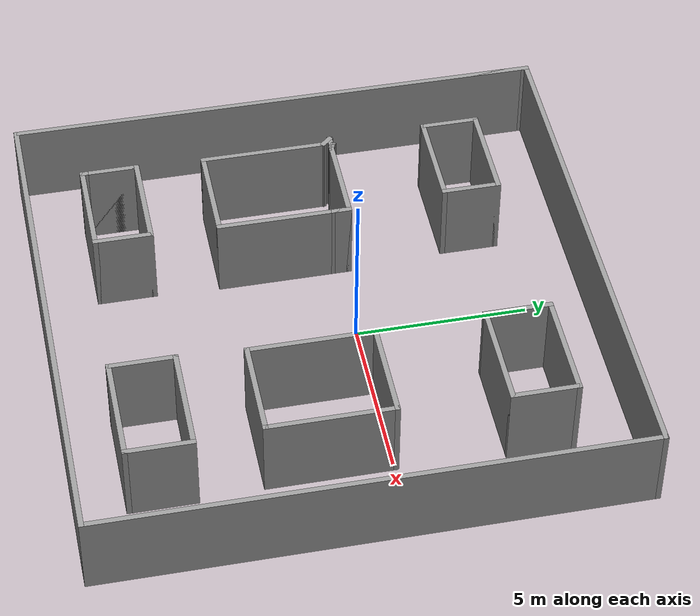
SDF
<?xml version='1.0'?>
<sdf version='1.7'>
  <model name='modelos'>
    <pose>-0.053157 -0.98343 0 0 -0 0</pose>
    <link name='Wall_10'>
      <collision name='Wall_10_Collision'>
        <geometry>
          <box>
            <size>3 0.15 2.5</size>
          </box>
        </geometry>
        <pose>0 0 1.25 0 -0 0</pose>
      </collision>
      <visual name='Wall_10_Visual'>
        <pose>0 0 1.25 0 -0 0</pose>
        <geometry>
          <box>
            <size>3 0.15 2.5</size>
          </box>
        </geometry>
        <material>
          <script>
            <uri>file://media/materials/scripts/gazebo.material</uri>
            <name>Gazebo/Grey</name>
          </script>
          <ambient>1 1 1 1</ambient>
        </material>
        <meta>
          <layer>0</layer>
        </meta>
      </visual>
      <pose>-4.15387 4.13978 0 0 -0 3.14159</pose>
    </link>
    <link name='Wall_11'>
      <collision name='Wall_11_Collision'>
        <geometry>
          <box>
            <size>1.75 0.15 2.5</size>
          </box>
        </geometry>
        <pose>0 0 1.25 0 -0 0</pose>
      </collision>
      <visual name='Wall_11_Visual'>
        <pose>0 0 1.25 0 -0 0</pose>
        <geometry>
          <box>
            <size>1.75 0.15 2.5</size>
          </box>
        </geometry>
        <material>
          <script>
            <uri>file://media/materials/scripts/gazebo.material</uri>
            <name>Gazebo/Grey</name>
          </script>
          <ambient>1 1 1 1</ambient>
        </material>
        <meta>
          <layer>0</layer>
        </meta>
      </visual>
      <pose>-5.57887 4.93978 0 0 -0 1.5708</pose>
    </link>
    <link name='Wall_13'>
      <collision name='Wall_13_Collision'>
        <geometry>
          <box>
            <size>2 0.15 2.5</size>
          </box>
        </geometry>
        <pose>0 0 1.25 0 -0 0</pose>
      </collision>
      <visual name='Wall_13_Visual'>
        <pose>0 0 1.25 0 -0 0</pose>
        <geometry>
          <box>
            <size>2 0.15 2.5</size>
          </box>
        </geometry>
        <material>
          <script>
            <uri>file://media/materials/scripts/gazebo.material</uri>
            <name>Gazebo/Grey</name>
          </script>
          <ambient>1 1 1 1</ambient>
        </material>
        <meta>
          <layer>0</layer>
        </meta>
      </visual>
      <pose>5.36291 5.09592 0 0 -0 1.5708</pose>
    </link>
    <link name='Wall_14'>
      <collision name='Wall_14_Collision'>
        <geometry>
          <box>
            <size>3.25 0.15 2.5</size>
          </box>
        </geometry>
        <pose>0 0 1.25 0 -0 0</pose>
      </collision>
      <visual name='Wall_14_Visual'>
        <pose>0 0 1.25 0 -0 0</pose>
        <geometry>
          <box>
            <size>3.25 0.15 2.5</size>
          </box>
        </geometry>
        <material>
          <script>
            <uri>file://media/materials/scripts/gazebo.material</uri>
            <name>Gazebo/Grey</name>
          </script>
          <ambient>1 1 1 1</ambient>
        </material>
        <meta>
          <layer>0</layer>
        </meta>
      </visual>
      <pose>3.81291 6.02092 0 0 -0 3.14159</pose>
    </link>
    <link name='Wall_15'>
      <collision name='Wall_15_Collision'>
        <geometry>
          <box>
            <size>2 0.15 2.5</size>
          </box>
        </geometry>
        <pose>0 0 1.25 0 -0 0</pose>
      </collision>
      <visual name='Wall_15_Visual'>
        <pose>0 0 1.25 0 -0 0</pose>
        <geometry>
          <box>
            <size>2 0.15 2.5</size>
          </box>
        </geometry>
        <material>
          <script>
            <uri>file://media/materials/scripts/gazebo.material</uri>
            <name>Gazebo/Grey</name>
          </script>
          <ambient>1 1 1 1</ambient>
        </material>
        <meta>
          <layer>0</layer>
        </meta>
      </visual>
      <pose>2.26291 5.09592 0 0 -0 -1.5708</pose>
    </link>
    <link name='Wall_16'>
      <collision name='Wall_16_Collision'>
        <geometry>
          <box>
            <size>3.25 0.15 2.5</size>
          </box>
        </geometry>
        <pose>0 0 1.25 0 -0 0</pose>
      </collision>
      <visual name='Wall_16_Visual'>
        <pose>0 0 1.25 0 -0 0</pose>
        <geometry>
          <box>
            <size>3.25 0.15 2.5</size>
          </box>
        </geometry>
        <material>
          <script>
            <uri>file://media/materials/scripts/gazebo.material</uri>
            <name>Gazebo/Grey</name>
          </script>
          <ambient>1 1 1 1</ambient>
        </material>
        <meta>
          <layer>0</layer>
        </meta>
      </visual>
      <pose>3.81291 4.17092 0 0 -0 0</pose>
    </link>
    <link name='Wall_2'>
      <collision name='Wall_2_Collision'>
        <geometry>
          <box>
            <size>15.5 0.15 2.5</size>
          </box>
        </geometry>
        <pose>0 0 1.25 0 -0 0</pose>
      </collision>
      <visual name='Wall_2_Visual'>
        <pose>0 0 1.25 0 -0 0</pose>
        <geometry>
          <box>
            <size>15.5 0.15 2.5</size>
          </box>
        </geometry>
        <material>
          <script>
            <uri>file://media/materials/scripts/gazebo.material</uri>
            <name>Gazebo/Grey</name>
          </script>
          <ambient>1 1 1 1</ambient>
        </material>
        <meta>
          <layer>0</layer>
        </meta>
      </visual>
      <pose>-7.55 -0.125 0 0 -0 -1.5708</pose>
    </link>
    <link name='Wall_20'>
      <collision name='Wall_20_Collision'>
        <geometry>
          <box>
            <size>1.5 0.15 2.5</size>
          </box>
        </geometry>
        <pose>0 0 1.25 0 -0 0</pose>
      </collision>
      <visual name='Wall_20_Visual'>
        <pose>0 0 1.25 0 -0 0</pose>
        <geometry>
          <box>
            <size>1.5 0.15 2.5</size>
          </box>
        </geometry>
        <material>
          <script>
            <uri>file://media/materials/scripts/gazebo.material</uri>
            <name>Gazebo/Grey</name>
          </script>
          <ambient>1 1 1 1</ambient>
        </material>
        <meta>
          <layer>0</layer>
        </meta>
      </visual>
      <pose>-5.45819 -5.17064 0 0 -0 1.5708</pose>
    </link>
    <link name='Wall_21'>
      <collision name='Wall_21_Collision'>
        <geometry>
          <box>
            <size>3 0.15 2.5</size>
          </box>
        </geometry>
        <pose>0 0 1.25 0 -0 0</pose>
      </collision>
      <visual name='Wall_21_Visual'>
        <pose>0 0 1.25 0 -0 0</pose>
        <geometry>
          <box>
            <size>3 0.15 2.5</size>
          </box>
        </geometry>
        <material>
          <script>
            <uri>file://media/materials/scripts/gazebo.material</uri>
            <name>Gazebo/Grey</name>
          </script>
          <ambient>1 1 1 1</ambient>
        </material>
        <meta>
          <layer>0</layer>
        </meta>
      </visual>
      <pose>-4.03319 -4.49564 0 0 -0 0</pose>
    </link>
    <link name='Wall_22'>
      <collision name='Wall_22_Collision'>
        <geometry>
          <box>
            <size>1.75 0.15 2.5</size>
          </box>
        </geometry>
        <pose>0 0 1.25 0 -0 0</pose>
      </collision>
      <visual name='Wall_22_Visual'>
        <pose>0 0 1.25 0 -0 0</pose>
        <geometry>
          <box>
            <size>1.75 0.15 2.5</size>
          </box>
        </geometry>
        <material>
          <script>
            <uri>file://media/materials/scripts/gazebo.material</uri>
            <name>Gazebo/Grey</name>
          </script>
          <ambient>1 1 1 1</ambient>
        </material>
        <meta>
          <layer>0</layer>
        </meta>
      </visual>
      <pose>-2.60819 -5.29564 0 0 -0 -1.5708</pose>
    </link>
    <link name='Wall_23'>
      <collision name='Wall_23_Collision'>
        <geometry>
          <box>
            <size>3 0.15 2.5</size>
          </box>
        </geometry>
        <pose>0 0 1.25 0 -0 0</pose>
      </collision>
      <visual name='Wall_23_Visual'>
        <pose>0 0 1.25 0 -0 0</pose>
        <geometry>
          <box>
            <size>3 0.15 2.5</size>
          </box>
        </geometry>
        <material>
          <script>
            <uri>file://media/materials/scripts/gazebo.material</uri>
            <name>Gazebo/Grey</name>
          </script>
          <ambient>1 1 1 1</ambient>
        </material>
        <meta>
          <layer>0</layer>
        </meta>
      </visual>
      <pose>-4.03319 -6.09564 0 0 -0 3.14159</pose>
    </link>
    <link name='Wall_24'>
      <collision name='Wall_24_Collision'>
        <geometry>
          <box>
            <size>1.75 0.15 2.5</size>
          </box>
        </geometry>
        <pose>0 0 1.25 0 -0 0</pose>
      </collision>
      <visual name='Wall_24_Visual'>
        <pose>0 0 1.25 0 -0 0</pose>
        <geometry>
          <box>
            <size>1.75 0.15 2.5</size>
          </box>
        </geometry>
        <material>
          <script>
            <uri>file://media/materials/scripts/gazebo.material</uri>
            <name>Gazebo/Grey</name>
          </script>
          <ambient>1 1 1 1</ambient>
        </material>
        <meta>
          <layer>0</layer>
        </meta>
      </visual>
      <pose>-5.45819 -5.29564 0 0 -0 1.5708</pose>
    </link>
    <link name='Wall_26'>
      <collision name='Wall_26_Collision'>
        <geometry>
          <box>
            <size>3.75 0.15 2.5</size>
          </box>
        </geometry>
        <pose>0 0 1.25 0 -0 0</pose>
      </collision>
      <visual name='Wall_26_Visual'>
        <pose>0 0 1.25 0 -0 0</pose>
        <geometry>
          <box>
            <size>3.75 0.15 2.5</size>
          </box>
        </geometry>
        <material>
          <script>
            <uri>file://media/materials/scripts/gazebo.material</uri>
            <name>Gazebo/Grey</name>
          </script>
          <ambient>1 1 1 1</ambient>
        </material>
        <meta>
          <layer>0</layer>
        </meta>
      </visual>
      <pose>-5.37773 -0.72657 0 0 -0 -1.5708</pose>
    </link>
    <link name='Wall_27'>
      <collision name='Wall_27_Collision'>
        <geometry>
          <box>
            <size>3 0.15 2.5</size>
          </box>
        </geometry>
        <pose>0 0 1.25 0 -0 0</pose>
      </collision>
      <visual name='Wall_27_Visual'>
        <pose>0 0 1.25 0 -0 0</pose>
        <geometry>
          <box>
            <size>3 0.15 2.5</size>
          </box>
        </geometry>
        <material>
          <script>
            <uri>file://media/materials/scripts/gazebo.material</uri>
            <name>Gazebo/Grey</name>
          </script>
          <ambient>1 1 1 1</ambient>
        </material>
        <meta>
          <layer>0</layer>
        </meta>
      </visual>
      <pose>-3.95273 -2.52657 0 0 -0 0</pose>
    </link>
    <link name='Wall_28'>
      <collision name='Wall_28_Collision'>
        <geometry>
          <box>
            <size>3.5 0.15 2.5</size>
          </box>
        </geometry>
        <pose>0 0 1.25 0 -0 0</pose>
      </collision>
      <visual name='Wall_28_Visual'>
        <pose>0 0 1.25 0 -0 0</pose>
        <geometry>
          <box>
            <size>3.5 0.15 2.5</size>
          </box>
        </geometry>
        <material>
          <script>
            <uri>file://media/materials/scripts/gazebo.material</uri>
            <name>Gazebo/Grey</name>
          </script>
          <ambient>1 1 1 1</ambient>
        </material>
        <meta>
          <layer>0</layer>
        </meta>
      </visual>
      <pose>-2.52773 -0.85157 0 0 -0 1.5708</pose>
    </link>
    <link name='Wall_29'>
      <collision name='Wall_29_Collision'>
        <geometry>
          <box>
            <size>0.25 0.15 2.5</size>
          </box>
        </geometry>
        <pose>0 0 1.25 0 -0 0</pose>
      </collision>
      <visual name='Wall_29_Visual'>
        <pose>0 0 1.25 0 -0 0</pose>
        <geometry>
          <box>
            <size>0.25 0.15 2.5</size>
          </box>
        </geometry>
        <material>
          <script>
            <uri>file://media/materials/scripts/gazebo.material</uri>
            <name>Gazebo/Grey</name>
          </script>
          <ambient>1 1 1 1</ambient>
        </material>
        <meta>
          <layer>0</layer>
        </meta>
      </visual>
      <pose>-2.52773 0.87343 0 0 -0 1.5708</pose>
    </link>
    <link name='Wall_3'>
      <collision name='Wall_3_Collision'>
        <geometry>
          <box>
            <size>15.25 0.15 2.5</size>
          </box>
        </geometry>
        <pose>0 0 1.25 0 -0 0</pose>
      </collision>
      <visual name='Wall_3_Visual'>
        <pose>0 0 1.25 0 -0 0</pose>
        <geometry>
          <box>
            <size>15.25 0.15 2.5</size>
          </box>
        </geometry>
        <material>
          <script>
            <uri>file://media/materials/scripts/gazebo.material</uri>
            <name>Gazebo/Grey</name>
          </script>
          <ambient>1 1 1 1</ambient>
        </material>
        <meta>
          <layer>0</layer>
        </meta>
      </visual>
      <pose>0 -7.8 0 0 -0 0</pose>
    </link>
    <link name='Wall_30'>
      <collision name='Wall_30_Collision'>
        <geometry>
          <box>
            <size>0.5 0.15 2.5</size>
          </box>
        </geometry>
        <pose>0 0 1.25 0 -0 0</pose>
      </collision>
      <visual name='Wall_30_Visual'>
        <pose>0 0 1.25 0 -0 0</pose>
        <geometry>
          <box>
            <size>0.5 0.15 2.5</size>
          </box>
        </geometry>
        <material>
          <script>
            <uri>file://media/materials/scripts/gazebo.material</uri>
            <name>Gazebo/Grey</name>
          </script>
          <ambient>1 1 1 1</ambient>
        </material>
        <meta>
          <layer>0</layer>
        </meta>
      </visual>
      <pose>-2.52773 1.09843 0 0 -0 1.5708</pose>
    </link>
    <link name='Wall_31'>
      <collision name='Wall_31_Collision'>
        <geometry>
          <box>
            <size>2.75 0.15 2.5</size>
          </box>
        </geometry>
        <pose>0 0 1.25 0 -0 0</pose>
      </collision>
      <visual name='Wall_31_Visual'>
        <pose>0 0 1.25 0 -0 0</pose>
        <geometry>
          <box>
            <size>2.75 0.15 2.5</size>
          </box>
        </geometry>
        <material>
          <script>
            <uri>file://media/materials/scripts/gazebo.material</uri>
            <name>Gazebo/Grey</name>
          </script>
          <ambient>1 1 1 1</ambient>
        </material>
        <meta>
          <layer>0</layer>
        </meta>
      </visual>
      <pose>-3.82773 1.27343 0 0 -0 3.14159</pose>
    </link>
    <link name='Wall_32'>
      <collision name='Wall_32_Collision'>
        <geometry>
          <box>
            <size>0.25 0.15 2.5</size>
          </box>
        </geometry>
        <pose>0 0 1.25 0 -0 0</pose>
      </collision>
      <visual name='Wall_32_Visual'>
        <pose>0 0 1.25 0 -0 0</pose>
        <geometry>
          <box>
            <size>0.25 0.15 2.5</size>
          </box>
        </geometry>
        <material>
          <script>
            <uri>file://media/materials/scripts/gazebo.material</uri>
            <name>Gazebo/Grey</name>
          </script>
          <ambient>1 1 1 1</ambient>
        </material>
        <meta>
          <layer>0</layer>
        </meta>
      </visual>
      <pose>-5.17603 1.28637 0 0 -0 2.87979</pose>
    </link>
    <link name='Wall_33'>
      <collision name='Wall_33_Collision'>
        <geometry>
          <box>
            <size>0.25 0.15 2.5</size>
          </box>
        </geometry>
        <pose>0 0 1.25 0 -0 0</pose>
      </collision>
      <visual name='Wall_33_Visual'>
        <pose>0 0 1.25 0 -0 0</pose>
        <geometry>
          <box>
            <size>0.25 0.15 2.5</size>
          </box>
        </geometry>
        <material>
          <script>
            <uri>file://media/materials/scripts/gazebo.material</uri>
            <name>Gazebo/Grey</name>
          </script>
          <ambient>1 1 1 1</ambient>
        </material>
        <meta>
          <layer>0</layer>
        </meta>
      </visual>
      <pose>-5.26763 1.32431 0 0 -0 2.61799</pose>
    </link>
    <link name='Wall_34'>
      <collision name='Wall_34_Collision'>
        <geometry>
          <box>
            <size>0.25 0.15 2.5</size>
          </box>
        </geometry>
        <pose>0 0 1.25 0 -0 0</pose>
      </collision>
      <visual name='Wall_34_Visual'>
        <pose>0 0 1.25 0 -0 0</pose>
        <geometry>
          <box>
            <size>0.25 0.15 2.5</size>
          </box>
        </geometry>
        <material>
          <script>
            <uri>file://media/materials/scripts/gazebo.material</uri>
            <name>Gazebo/Grey</name>
          </script>
          <ambient>1 1 1 1</ambient>
        </material>
        <meta>
          <layer>0</layer>
        </meta>
      </visual>
      <pose>-5.26763 1.32431 0 0 -0 -0.523599</pose>
    </link>
    <link name='Wall_35'>
      <collision name='Wall_35_Collision'>
        <geometry>
          <box>
            <size>0.5 0.15 2.5</size>
          </box>
        </geometry>
        <pose>0 0 1.25 0 -0 0</pose>
      </collision>
      <visual name='Wall_35_Visual'>
        <pose>0 0 1.25 0 -0 0</pose>
        <geometry>
          <box>
            <size>0.5 0.15 2.5</size>
          </box>
        </geometry>
        <material>
          <script>
            <uri>file://media/materials/scripts/gazebo.material</uri>
            <name>Gazebo/Grey</name>
          </script>
          <ambient>1 1 1 1</ambient>
        </material>
        <meta>
          <layer>0</layer>
        </meta>
      </visual>
      <pose>-5.39933 1.29931 0 0 -0 3.14159</pose>
    </link>
    <link name='Wall_36'>
      <collision name='Wall_36_Collision'>
        <geometry>
          <box>
            <size>0.449452 0.15 2.5</size>
          </box>
        </geometry>
        <pose>0 0 1.25 0 -0 0</pose>
      </collision>
      <visual name='Wall_36_Visual'>
        <pose>0 0 1.25 0 -0 0</pose>
        <geometry>
          <box>
            <size>0.449452 0.15 2.5</size>
          </box>
        </geometry>
        <material>
          <script>
            <uri>file://media/materials/scripts/gazebo.material</uri>
            <name>Gazebo/Grey</name>
          </script>
          <ambient>1 1 1 1</ambient>
        </material>
        <meta>
          <layer>0</layer>
        </meta>
      </visual>
      <pose>-5.47603 1.18637 0 0 -0 -0.854615</pose>
    </link>
    <link name='Wall_38'>
      <collision name='Wall_38_Collision'>
        <geometry>
          <box>
            <size>3.25 0.15 2.5</size>
          </box>
        </geometry>
        <pose>0 0 1.25 0 -0 0</pose>
      </collision>
      <visual name='Wall_38_Visual'>
        <pose>0 0 1.25 0 -0 0</pose>
        <geometry>
          <box>
            <size>3.25 0.15 2.5</size>
          </box>
        </geometry>
        <material>
          <script>
            <uri>file://media/materials/scripts/gazebo.material</uri>
            <name>Gazebo/Grey</name>
          </script>
          <ambient>1 1 1 1</ambient>
        </material>
        <meta>
          <layer>0</layer>
        </meta>
      </visual>
      <pose>3.7752 -4.51814 0 0 -0 0</pose>
    </link>
    <link name='Wall_39'>
      <collision name='Wall_39_Collision'>
        <geometry>
          <box>
            <size>2 0.15 2.5</size>
          </box>
        </geometry>
        <pose>0 0 1.25 0 -0 0</pose>
      </collision>
      <visual name='Wall_39_Visual'>
        <pose>0 0 1.25 0 -0 0</pose>
        <geometry>
          <box>
            <size>2 0.15 2.5</size>
          </box>
        </geometry>
        <material>
          <script>
            <uri>file://media/materials/scripts/gazebo.material</uri>
            <name>Gazebo/Grey</name>
          </script>
          <ambient>1 1 1 1</ambient>
        </material>
        <meta>
          <layer>0</layer>
        </meta>
      </visual>
      <pose>5.3252 -5.44314 0 0 -0 -1.5708</pose>
    </link>
    <link name='Wall_4'>
      <collision name='Wall_4_Collision'>
        <geometry>
          <box>
            <size>15.75 0.15 2.5</size>
          </box>
        </geometry>
        <pose>0 0 1.25 0 -0 0</pose>
      </collision>
      <visual name='Wall_4_Visual'>
        <pose>0 0 1.25 0 -0 0</pose>
        <geometry>
          <box>
            <size>15.75 0.15 2.5</size>
          </box>
        </geometry>
        <material>
          <script>
            <uri>file://media/materials/scripts/gazebo.material</uri>
            <name>Gazebo/Grey</name>
          </script>
          <ambient>1 1 1 1</ambient>
        </material>
        <meta>
          <layer>0</layer>
        </meta>
      </visual>
      <pose>7.55 0 0 0 -0 1.5708</pose>
    </link>
    <link name='Wall_40'>
      <collision name='Wall_40_Collision'>
        <geometry>
          <box>
            <size>3.25 0.15 2.5</size>
          </box>
        </geometry>
        <pose>0 0 1.25 0 -0 0</pose>
      </collision>
      <visual name='Wall_40_Visual'>
        <pose>0 0 1.25 0 -0 0</pose>
        <geometry>
          <box>
            <size>3.25 0.15 2.5</size>
          </box>
        </geometry>
        <material>
          <script>
            <uri>file://media/materials/scripts/gazebo.material</uri>
            <name>Gazebo/Grey</name>
          </script>
          <ambient>1 1 1 1</ambient>
        </material>
        <meta>
          <layer>0</layer>
        </meta>
      </visual>
      <pose>3.7752 -6.36814 0 0 -0 3.14159</pose>
    </link>
    <link name='Wall_41'>
      <collision name='Wall_41_Collision'>
        <geometry>
          <box>
            <size>2 0.15 2.5</size>
          </box>
        </geometry>
        <pose>0 0 1.25 0 -0 0</pose>
      </collision>
      <visual name='Wall_41_Visual'>
        <pose>0 0 1.25 0 -0 0</pose>
        <geometry>
          <box>
            <size>2 0.15 2.5</size>
          </box>
        </geometry>
        <material>
          <script>
            <uri>file://media/materials/scripts/gazebo.material</uri>
            <name>Gazebo/Grey</name>
          </script>
          <ambient>1 1 1 1</ambient>
        </material>
        <meta>
          <layer>0</layer>
        </meta>
      </visual>
      <pose>2.2252 -5.44314 0 0 -0 1.5708</pose>
    </link>
    <link name='Wall_43'>
      <collision name='Wall_43_Collision'>
        <geometry>
          <box>
            <size>3.75 0.15 2.5</size>
          </box>
        </geometry>
        <pose>0 0 1.25 0 -0 0</pose>
      </collision>
      <visual name='Wall_43_Visual'>
        <pose>0 0 1.25 0 -0 0</pose>
        <geometry>
          <box>
            <size>3.75 0.15 2.5</size>
          </box>
        </geometry>
        <material>
          <script>
            <uri>file://media/materials/scripts/gazebo.material</uri>
            <name>Gazebo/Grey</name>
          </script>
          <ambient>1 1 1 1</ambient>
        </material>
        <meta>
          <layer>0</layer>
        </meta>
      </visual>
      <pose>2.34588 -0.766797 0 0 -0 -1.5708</pose>
    </link>
    <link name='Wall_44'>
      <collision name='Wall_44_Collision'>
        <geometry>
          <box>
            <size>3 0.15 2.5</size>
          </box>
        </geometry>
        <pose>0 0 1.25 0 -0 0</pose>
      </collision>
      <visual name='Wall_44_Visual'>
        <pose>0 0 1.25 0 -0 0</pose>
        <geometry>
          <box>
            <size>3 0.15 2.5</size>
          </box>
        </geometry>
        <material>
          <script>
            <uri>file://media/materials/scripts/gazebo.material</uri>
            <name>Gazebo/Grey</name>
          </script>
          <ambient>1 1 1 1</ambient>
        </material>
        <meta>
          <layer>0</layer>
        </meta>
      </visual>
      <pose>3.77088 -2.5668 0 0 -0 0</pose>
    </link>
    <link name='Wall_45'>
      <collision name='Wall_45_Collision'>
        <geometry>
          <box>
            <size>3.75 0.15 2.5</size>
          </box>
        </geometry>
        <pose>0 0 1.25 0 -0 0</pose>
      </collision>
      <visual name='Wall_45_Visual'>
        <pose>0 0 1.25 0 -0 0</pose>
        <geometry>
          <box>
            <size>3.75 0.15 2.5</size>
          </box>
        </geometry>
        <material>
          <script>
            <uri>file://media/materials/scripts/gazebo.material</uri>
            <name>Gazebo/Grey</name>
          </script>
          <ambient>1 1 1 1</ambient>
        </material>
        <meta>
          <layer>0</layer>
        </meta>
      </visual>
      <pose>5.19588 -0.766797 0 0 -0 1.5708</pose>
    </link>
    <link name='Wall_46'>
      <collision name='Wall_46_Collision'>
        <geometry>
          <box>
            <size>3 0.15 2.5</size>
          </box>
        </geometry>
        <pose>0 0 1.25 0 -0 0</pose>
      </collision>
      <visual name='Wall_46_Visual'>
        <pose>0 0 1.25 0 -0 0</pose>
        <geometry>
          <box>
            <size>3 0.15 2.5</size>
          </box>
        </geometry>
        <material>
          <script>
            <uri>file://media/materials/scripts/gazebo.material</uri>
            <name>Gazebo/Grey</name>
          </script>
          <ambient>1 1 1 1</ambient>
        </material>
        <meta>
          <layer>0</layer>
        </meta>
      </visual>
      <pose>3.77088 1.0332 0 0 -0 3.14159</pose>
    </link>
    <link name='Wall_5'>
      <collision name='Wall_5_Collision'>
        <geometry>
          <box>
            <size>15.25 0.15 2.5</size>
          </box>
        </geometry>
        <pose>0 0 1.25 0 -0 0</pose>
      </collision>
      <visual name='Wall_5_Visual'>
        <pose>0 0 1.25 0 -0 0</pose>
        <geometry>
          <box>
            <size>15.25 0.15 2.5</size>
          </box>
        </geometry>
        <material>
          <script>
            <uri>file://media/materials/scripts/gazebo.material</uri>
            <name>Gazebo/Grey</name>
          </script>
          <ambient>1 1 1 1</ambient>
        </material>
        <meta>
          <layer>0</layer>
        </meta>
      </visual>
      <pose>0 7.8 0 0 -0 3.14159</pose>
    </link>
    <link name='Wall_6'>
      <collision name='Wall_6_Collision'>
        <geometry>
          <box>
            <size>1.75 0.15 2.5</size>
          </box>
        </geometry>
        <pose>0 0 1.25 0 -0 0</pose>
      </collision>
      <visual name='Wall_6_Visual'>
        <pose>0 0 1.25 0 -0 0</pose>
        <geometry>
          <box>
            <size>1.75 0.15 2.5</size>
          </box>
        </geometry>
        <material>
          <script>
            <uri>file://media/materials/scripts/gazebo.material</uri>
            <name>Gazebo/Grey</name>
          </script>
          <ambient>1 1 1 1</ambient>
        </material>
        <meta>
          <layer>0</layer>
        </meta>
      </visual>
      <pose>-7.55 7 0 0 -0 -1.5708</pose>
    </link>
    <link name='Wall_8'>
      <collision name='Wall_8_Collision'>
        <geometry>
          <box>
            <size>3 0.15 2.5</size>
          </box>
        </geometry>
        <pose>0 0 1.25 0 -0 0</pose>
      </collision>
      <visual name='Wall_8_Visual'>
        <pose>0 0 1.25 0 -0 0</pose>
        <geometry>
          <box>
            <size>3 0.15 2.5</size>
          </box>
        </geometry>
        <material>
          <script>
            <uri>file://media/materials/scripts/gazebo.material</uri>
            <name>Gazebo/Grey</name>
          </script>
          <ambient>1 1 1 1</ambient>
        </material>
        <meta>
          <layer>0</layer>
        </meta>
      </visual>
      <pose>-4.15387 5.73978 0 0 -0 0</pose>
    </link>
    <link name='Wall_9'>
      <collision name='Wall_9_Collision'>
        <geometry>
          <box>
            <size>1.75 0.15 2.5</size>
          </box>
        </geometry>
        <pose>0 0 1.25 0 -0 0</pose>
      </collision>
      <visual name='Wall_9_Visual'>
        <pose>0 0 1.25 0 -0 0</pose>
        <geometry>
          <box>
            <size>1.75 0.15 2.5</size>
          </box>
        </geometry>
        <material>
          <script>
            <uri>file://media/materials/scripts/gazebo.material</uri>
            <name>Gazebo/Grey</name>
          </script>
          <ambient>1 1 1 1</ambient>
        </material>
        <meta>
          <layer>0</layer>
        </meta>
      </visual>
      <pose>-2.72887 4.93978 0 0 -0 -1.5708</pose>
    </link>
    <static>1</static>
  </model>
</sdf>
